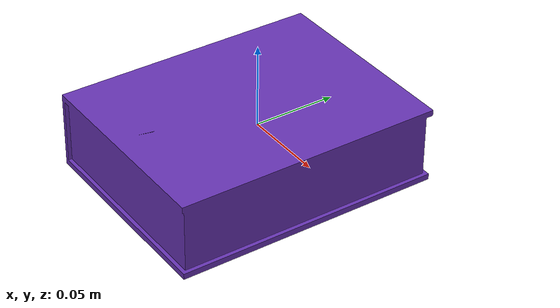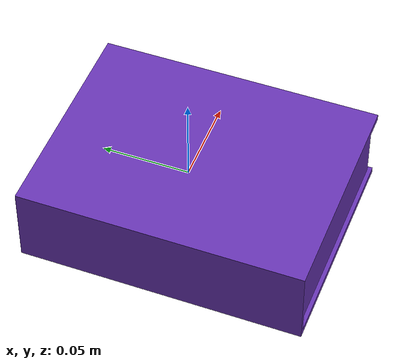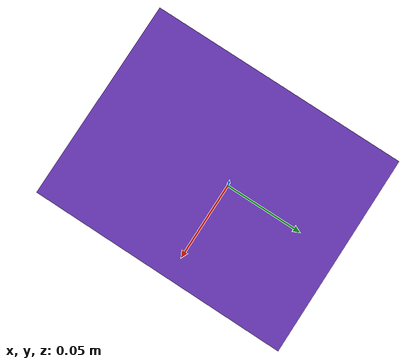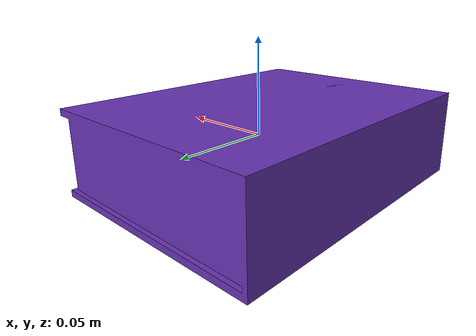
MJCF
<mujoco model="top_watertight_tiny">
  <default>
    <default group="2" type="mesh" contype="0" conaffinity="0">
      <geom group="2" type="mesh" contype="0" conaffinity="0"/>
    </default>
    <default group="3" type="mesh">
      <geom group="3" type="mesh"/>
    </default>
  </default>
  <asset>
    <mesh file="top_watertight_tiny.obj"/>
    <mesh file="top_watertight_tiny_collision_0.obj"/>
    <mesh file="top_watertight_tiny_collision_1.obj"/>
    <mesh file="top_watertight_tiny_collision_2.obj"/>
    <mesh file="top_watertight_tiny_collision_3.obj"/>
  </asset>
  <worldbody>
    <body name="top_watertight_tiny">
      <freejoint/>
      <geom mesh="top_watertight_tiny" group="2" type="mesh" rgba="0.4 0.2 0.7 1" contype="0" conaffinity="0"/>
      <geom mesh="top_watertight_tiny_collision_0" rgba="0.2358039718393179 0.9285897612086296 0.8540906387879093 1" group="3" type="mesh"/>
      <geom mesh="top_watertight_tiny_collision_1" rgba="0.5193286078183489 0.5445016697646096 0.7018201515298376 1" group="3" type="mesh"/>
      <geom mesh="top_watertight_tiny_collision_2" rgba="0.02302336933126181 0.4213572478682257 0.14783205546232514 1" group="3" type="mesh"/>
      <geom mesh="top_watertight_tiny_collision_3" rgba="0.5626432468548986 0.3236847919616307 0.15971987629968443 1" group="3" type="mesh"/>
    </body>
  </worldbody>
</mujoco>
